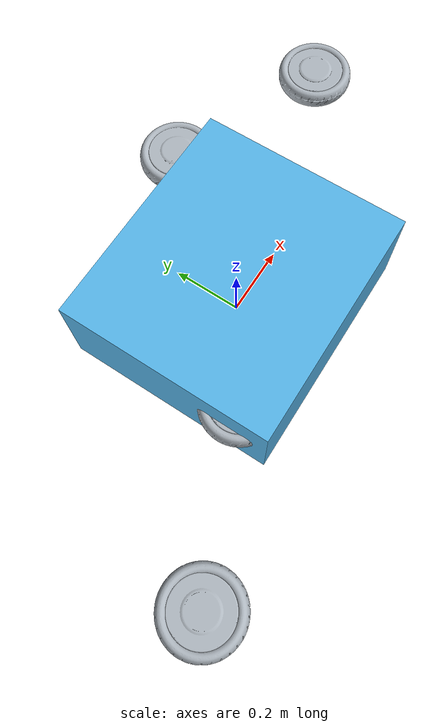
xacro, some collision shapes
<?xml version="1.0"?>
<robot name="rmp401" xmlns:xacro="http://www.ros.org/wiki/xacro">
  <xacro:include filename="$(find rmp401_description)/urdf/materials.xacro"/>
  <xacro:include filename="$(find rmp401_description)/urdf/rmp401_macro.xacro"/>
  <xacro:include filename="$(find rmp401_description)/urdf/zed_mounts.xacro"/>

  <xacro:arg name="prefix" default=""/>
  <xacro:arg name="with_zed4" default="true"/>
  <xacro:arg name="mesh_scale" default="1.0"/>  <!-- m단위 가정 -->

  <xacro:rmp401_base prefix="$(arg prefix)"/>
  <xacro:if value="$(arg with_zed4)">
    <xacro:mount_zed4 prefix="$(arg prefix)"/>
  </xacro:if>
</robot>

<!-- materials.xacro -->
<robot name="materials" xmlns:xacro="http://www.ros.org/wiki/xacro">
  <material name="black_matte">
    <color rgba="0.05 0.05 0.05 1.0"/>
  </material>
  <material name="gray_matte">
    <color rgba="0.4 0.4 0.4 1.0"/>
  </material>
  <material name="rmp_green">
    <color rgba="0.0 0.6 0.2 1.0"/>
  </material>
</robot>

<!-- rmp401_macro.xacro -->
<robot name="rmp401" xmlns:xacro="http://www.ros.org/wiki/xacro">

  <xacro:property name="PI" value="3.1415926535897931"/>
  <xacro:arg name="mesh_scale" default="1.0"/>
  <xacro:property name="mesh_scale" value="$(arg mesh_scale)"/>

  <!-- 치수 -->
  <xacro:property name="base_len"     value="0.672"/>
  <xacro:property name="base_wid"     value="0.598"/>
  <xacro:property name="base_hgt"     value="0.280"/>
  <xacro:property name="wheel_radius" value="0.108"/>
  <xacro:property name="wheel_width"  value="0.053"/>
  <xacro:property name="wheelbase"    value="0.456"/>
  <xacro:property name="track"        value="0.545"/>

  <!-- base 메쉬 보정(원점이 앞면-바닥 쪽일 때의 일반해) -->
  <xacro:property name="base_vis_x" value="${-base_len/2}"/>
  <xacro:property name="base_vis_y" value="0.0"/>
  <xacro:property name="base_vis_z" value="${base_hgt/2 - wheel_radius}"/>
  <xacro:arg name="base_rpy" default="${PI/2} 0 ${-PI/2}"/>

  <!-- 파일 경로 -->
  <xacro:property name="mesh_base"    value="package://rmp401_description/meshes/base.dae"/>
  <xacro:property name="mesh_front_L" value="package://rmp401_description/meshes/front_left_wheel.dae"/>
  <xacro:property name="mesh_rear_L"  value="package://rmp401_description/meshes/rear_left_wheel.dae"/>

  <xacro:macro name="rmp401_base" params="prefix">
    <link name="${prefix}base_footprint"/>
    <joint name="${prefix}base_joint" type="fixed">
      <parent link="${prefix}base_footprint"/>
      <child  link="${prefix}base_link"/>
      <origin xyz="0 0 ${wheel_radius}" rpy="0 0 0"/>
    </joint>

    <link name="${prefix}base_link">
      <visual>
        <origin xyz="${base_vis_x} ${base_vis_y} ${base_vis_z}" rpy="$(arg base_rpy)"/>
        <geometry>
          <mesh filename="${mesh_base}" scale="${mesh_scale} ${mesh_scale} ${mesh_scale}"/>
        </geometry>
      </visual>
      <collision>
        <origin xyz="0 0 ${base_hgt/2 - wheel_radius}" rpy="0 0 0"/>
        <geometry><box size="${base_len} ${base_wid} ${base_hgt}"/></geometry>
      </collision>
      <inertial>
        <origin xyz="0 0 0"/>
        <mass value="65.0"/>
        <inertia ixx="1.0" ixy="0" ixz="0" iyy="2.0" iyz="0" izz="2.5"/>
      </inertial>
    </link>

    <!-- 휠 4개: 왼쪽은 -90°(X), 오른쪽은 +yaw π 추가 -->
    <xacro:wheel name="${prefix}front_left"
                 x="${ wheelbase/2}" y="${  track/2}"
                 mesh="${mesh_front_L}" parent="${prefix}base_link"
                 rpy_mesh="${-PI/2} 0 0" vis_xyz="0 0 0"/>
    <xacro:wheel name="${prefix}front_right"
                 x="${ wheelbase/2}" y="${- track/2}"
                 mesh="${mesh_front_L}" parent="${prefix}base_link"
                 rpy_mesh="${-PI/2} 0 ${PI}" vis_xyz="0 0 0"/>
    <xacro:wheel name="${prefix}rear_left"
                 x="${-wheelbase/2}" y="${  track/2}"
                 mesh="${mesh_rear_L}" parent="${prefix}base_link"
                 rpy_mesh="${-PI/2} 0 0" vis_xyz="0 0 0"/>
    <xacro:wheel name="${prefix}rear_right"
                 x="${-wheelbase/2}" y="${- track/2}"
                 mesh="${mesh_rear_L}" parent="${prefix}base_link"
                 rpy_mesh="${-PI/2} 0 ${PI}" vis_xyz="0 0 0"/>
  </xacro:macro>

  <xacro:macro name="wheel"
               params="name x y mesh parent:='base_link' rpy_mesh:='-1.5708 0 0' vis_xyz:='0 0 0'">
    <link name="${name}_link">
      <visual>
        <origin xyz="${vis_xyz}" rpy="${rpy_mesh}"/>
        <geometry>
          <mesh filename="${mesh}" scale="${mesh_scale} ${mesh_scale} ${mesh_scale}"/>
        </geometry>
      </visual>
      <collision>
        <origin xyz="0 0 0" rpy="-1.5708 0 0"/>
        <geometry><cylinder radius="${wheel_radius*0.98}" length="${wheel_width}"/></geometry>
      </collision>
      <inertial>
        <origin xyz="0 0 0"/>
        <mass value="2"/>
        <inertia ixx="0.05" ixy="0" ixz="0" iyy="0.05" iyz="0" izz="0.05"/>
      </inertial>
    </link>

    <joint name="${name}_joint" type="continuous">
      <parent link="${parent}"/>
      <child  link="${name}_link"/>
      <origin xyz="${x} ${y} 0" rpy="0 0 0"/>
      <axis xyz="0 1 0"/>
    </joint>
  </xacro:macro>

</robot>

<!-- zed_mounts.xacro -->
<robot name="zed_mounts" xmlns:xacro="http://www.ros.org/wiki/xacro">

  <!-- 단순 프레임만 잡는 버전(카메라 링크 포즈만 정의) -->
  <xacro:macro name="mount_zed4" params="prefix">
    <!-- front -->
    <link name="${prefix}zed_front_cam_link"/>
    <joint name="${prefix}zed_front_joint" type="fixed">
      <parent link="${prefix}base_link"/>
      <child  link="${prefix}zed_front_cam_link"/>
      <origin xyz="0.30 0.00 0.45" rpy="0 0 0"/> <!-- 전방 30cm, 높이 45cm -->
    </joint>

    <!-- left -->
    <link name="${prefix}zed_left_cam_link"/>
    <joint name="${prefix}zed_left_joint" type="fixed">
      <parent link="${prefix}base_link"/>
      <child  link="${prefix}zed_left_cam_link"/>
      <origin xyz="0.05 0.25 0.45" rpy="0 0 1.5708"/>
    </joint>

    <!-- right -->
    <link name="${prefix}zed_right_cam_link"/>
    <joint name="${prefix}zed_right_joint" type="fixed">
      <parent link="${prefix}base_link"/>
      <child  link="${prefix}zed_right_cam_link"/>
      <origin xyz="0.05 -0.25 0.45" rpy="0 0 -1.5708"/>
    </joint>

    <!-- back -->
    <link name="${prefix}zed_back_cam_link"/>
    <joint name="${prefix}zed_back_joint" type="fixed">
      <parent link="${prefix}base_link"/>
      <child  link="${prefix}zed_back_cam_link"/>
      <origin xyz="-0.30 0.00 0.45" rpy="0 0 3.1416"/>
    </joint>
  </xacro:macro>
</robot>
